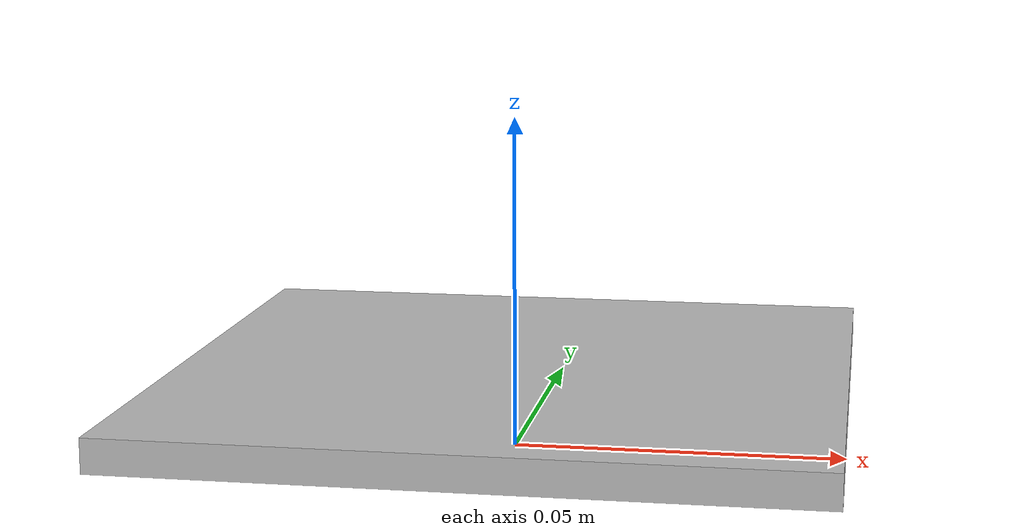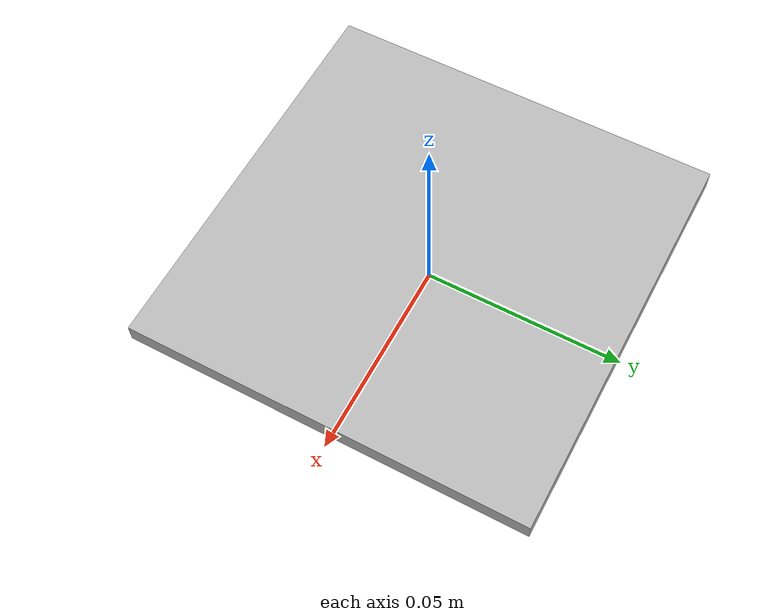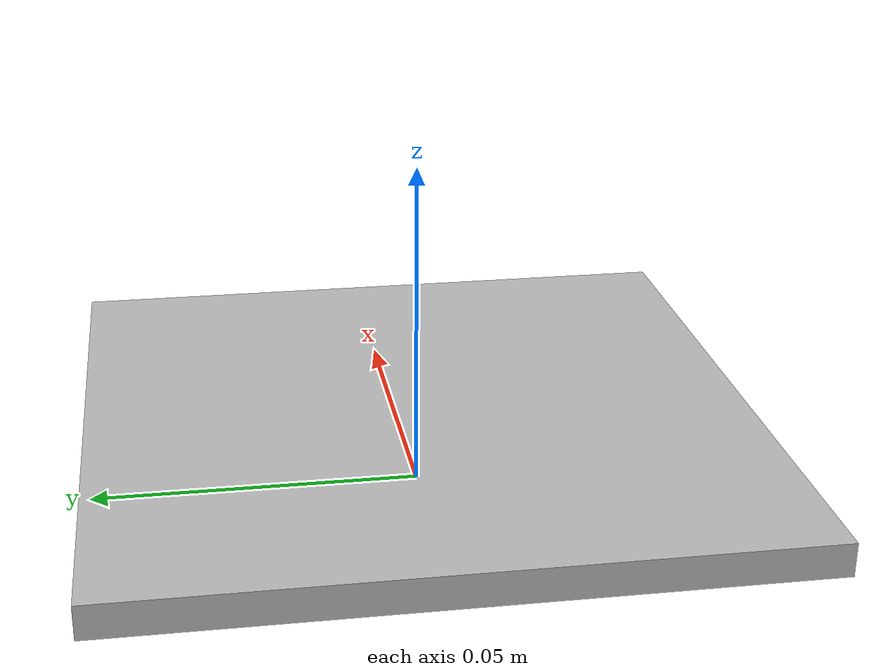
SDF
<?xml version="1.0" ?>
        <sdf version="1.5">
        <model name="DICT_4X4_50_s100_id0">
              <link name="Main">

              	<inertial>
                <mass>1</mass>
                <pose>0 0 0 0 0 0</pose>
                <inertia>
                    <ixx>1</ixx>
                    <iyy>1</iyy>
                    <izz>1</izz>
                </inertia>
                </inertial>

                <pose>0 0 0 0 0 -1.570796327</pose>
                    <visual name="DICT_4X4_50_s100_id0_Visual">
                        <pose>0 0 0.01 0 0 0</pose>
                        <geometry>
                            <mesh>
                                <scale>1 1 1</scale>
                                <uri>DICT_4X4_50_s100_id0.obj</uri>
                            </mesh>
                        </geometry>
                    </visual>
                    <gravity>1</gravity>
                    <velocity_decay/>
                    <self_collide>0</self_collide>
              </link>

          <plugin
                filename="Position_Control"
                name="gz::sim::v7::systems::PositionController">
                <timestep_precision>10</timestep_precision>
                <xyz_offset> 0 0 0</xyz_offset>
                <rpy_offset> 0 0 0</rpy_offset>
            </plugin>

          </model></sdf>
